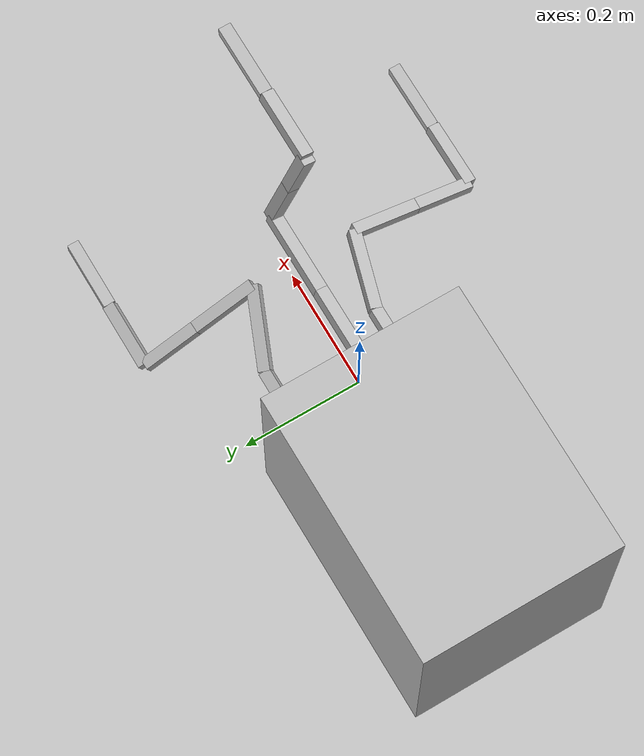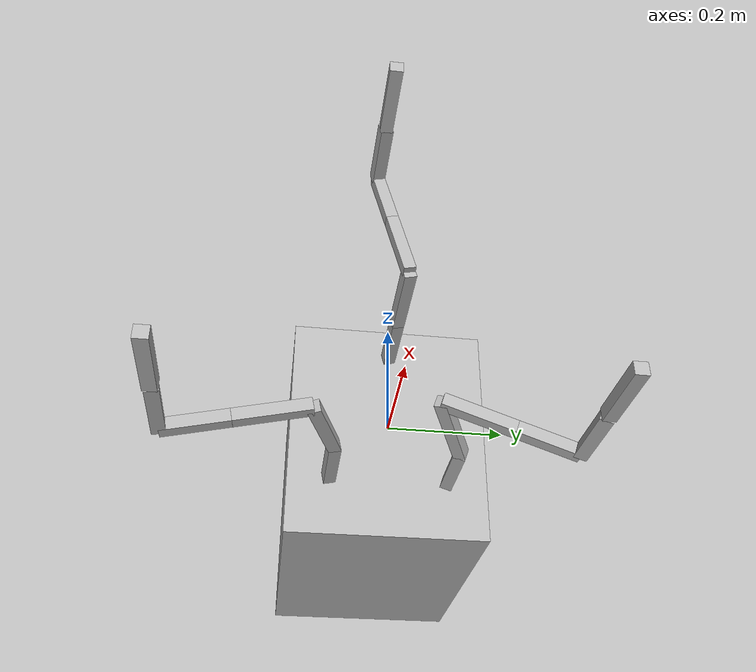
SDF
<?xml version="1.0" ?>
<sdf version="1.5">
<model name="four_bar_sdf">
<pose>0 0 0 0 0 0</pose>
<self_collide>true</self_collide>
<link name="linkROV">
<pose>-0.2286 0 0 0 0 0</pose>
<inertial>
<mass>1.0</mass>
<inertia>
<ixx>0.0227</ixx>
<iyy>0.0306</iyy>
<izz>0.0269</izz>
<ixy>0.0</ixy>
<ixz>0.0</ixz>
<iyz>0.0</iyz>
</inertia>
</inertial>
<collision name="linkROV_collision">
<geometry>
<box>
<size>0.4572 0.33805 0.39785</size>
</box>
</geometry>
</collision>
<visual name="linkROV_visual">
<geometry>
<box>
<size>0.4572 0.33805 0.39785</size>
</box>
</geometry>
<material>
<color rgba="0.3 0.3 0.3 1.0"/>
</material>
</visual>
</link>
<link name="arm1link1">
<pose>0.05750000 0.10000000 -0.10000000 -0.32166387 -0.00000000 0.00000000 </pose>
<inertial>
<mass>0.575</mass>
<inertia>
<ixx>3.8333e-05</ixx>
<iyy>6.5286e-04</iyy>
<izz>6.5286e-04</izz>
<ixy>0.0</ixy>
<ixz>0.0</ixz>
<iyz>0.0</iyz>
</inertia>
</inertial>
<collision name="arm1link1_collision">
<geometry>
<box>
<size>0.115 0.02 0.02</size>
</box>
</geometry>
</collision>
<visual name="arm1link1_visual">
<geometry>
<box>
<size>0.115 0.02 0.02</size>
</box>
</geometry>
<material>
<color rgba="0.3 0.3 0.3 1.0"/>
</material>
</visual>
</link>
<link name="arm1link2">
<pose>0.17910185 0.07331858 -0.09110876 -0.29618283 -0.12736172 -0.39442305 </pose>
<inertial>
<mass>0.700</mass>
<inertia>
<ixx>4.6667e-05</ixx>
<iyy>1.1667e-03</iyy>
<izz>1.1667e-03</izz>
<ixy>0.0</ixy>
<ixz>0.0</ixz>
<iyz>0.0</iyz>
</inertia>
</inertial>
<collision name="arm1link2_collision">
<geometry>
<box>
<size>0.140 0.02 0.02</size>
</box>
</geometry>
</collision>
<visual name="arm1link2_visual">
<geometry>
<box>
<size>0.140 0.02 0.02</size>
</box>
</geometry>
<material>
<color rgba="0.3 0.3 0.3 1.0"/>
</material>
</visual>
</link>
<link name="arm1link3">
<pose>0.24139741 0.10116110 -0.10038692 0.01046789 0.32149941 1.60391277 </pose>
<inertial>
<mass>0.575</mass>
<inertia>
<ixx>3.8333e-05</ixx>
<iyy>6.5286e-04</iyy>
<izz>6.5286e-04</izz>
<ixy>0.0</ixy>
<ixz>0.0</ixz>
<iyz>0.0</iyz>
</inertia>
</inertial>
<collision name="arm1link3_collision">
<geometry>
<box>
<size>0.115 0.02 0.02</size>
</box>
</geometry>
</collision>
<visual name="arm1link3_visual">
<geometry>
<box>
<size>0.115 0.02 0.02</size>
</box>
</geometry>
<material>
<color rgba="0.3 0.3 0.3 1.0"/>
</material>
</visual>
</link>
<link name="arm1link4">
<pose>0.23802041 0.20309717 -0.13435579 0.01047497 0.32149941 1.60391277 </pose>
<inertial>
<mass>0.500</mass>
<inertia>
<ixx>3.3333e-05</ixx>
<iyy>4.3333e-04</iyy>
<izz>4.3333e-04</izz>
<ixy>0.0</ixy>
<ixz>0.0</ixz>
<iyz>0.0</iyz>
</inertia>
</inertial>
<collision name="arm1link4_collision">
<geometry>
<box>
<size>0.100 0.02 0.02</size>
</box>
</geometry>
</collision>
<visual name="arm1link4_visual">
<geometry>
<box>
<size>0.100 0.02 0.02</size>
</box>
</geometry>
<material>
<color rgba="0.3 0.3 0.3 1.0"/>
</material>
</visual>
</link>
<link name="arm1link5">
<pose>0.29394972 0.25050979 -0.15015586 -0.32166410 0.00001033 0.00000861 </pose>
<inertial>
<mass>0.575</mass>
<inertia>
<ixx>3.8333e-05</ixx>
<iyy>6.5286e-04</iyy>
<izz>6.5286e-04</izz>
<ixy>0.0</ixy>
<ixz>0.0</ixz>
<iyz>0.0</iyz>
</inertia>
</inertial>
<collision name="arm1link5_collision">
<geometry>
<box>
<size>0.115 0.02 0.02</size>
</box>
</geometry>
</collision>
<visual name="arm1link5_visual">
<geometry>
<box>
<size>0.115 0.02 0.02</size>
</box>
</geometry>
<material>
<color rgba="0.3 0.3 0.3 1.0"/>
</material>
</visual>
</link>
<link name="arm1link6">
<pose>0.41144972 0.25051080 -0.15015708 -0.00001025 0.00001033 0.00000861 </pose>
<inertial>
<mass>0.600</mass>
<inertia>
<ixx>4.0000e-05</ixx>
<iyy>7.4000e-04</iyy>
<izz>7.4000e-04</izz>
<ixy>0.0</ixy>
<ixz>0.0</ixz>
<iyz>0.0</iyz>
</inertia>
</inertial>
<collision name="arm1link6_collision">
<geometry>
<box>
<size>0.120 0.02 0.02</size>
</box>
</geometry>
</collision>
<visual name="arm1link6_visual">
<geometry>
<box>
<size>0.120 0.02 0.02</size>
</box>
</geometry>
<material>
<color rgba="0.3 0.3 0.3 1.0"/>
</material>
</visual>
</link>
<link name="arm2link1">
<pose>0.05750000 -0.10000000 -0.10000000 -2.94380000 0.00000000 0.00000000 </pose>
<inertial>
<mass>0.575</mass>
<inertia>
<ixx>3.8333e-05</ixx>
<iyy>6.5286e-04</iyy>
<izz>6.5286e-04</izz>
<ixy>0.0</ixy>
<ixz>0.0</ixz>
<iyz>0.0</iyz>
</inertia>
</inertial>
<collision name="arm2link1_collision">
<geometry>
<box>
<size>0.115 0.02 0.02</size>
</box>
</geometry>
</collision>
<visual name="arm2link1_visual">
<geometry>
<box>
<size>0.115 0.02 0.02</size>
</box>
</geometry>
<material>
<color rgba="0.3 0.3 0.3 1.0"/>
</material>
</visual>
</link>
<link name="arm2link2">
<pose>0.18196000 -0.12002000 -0.10401000 -2.95220000 0.05733200 -0.29053000 </pose>
<inertial>
<mass>0.700</mass>
<inertia>
<ixx>4.6667e-05</ixx>
<iyy>1.1667e-03</iyy>
<izz>1.1667e-03</izz>
<ixy>0.0</ixy>
<ixz>0.0</ixz>
<iyz>0.0</iyz>
</inertia>
</inertial>
<collision name="arm2link2_collision">
<geometry>
<box>
<size>0.140 0.02 0.02</size>
</box>
</geometry>
</collision>
<visual name="arm2link2_visual">
<geometry>
<box>
<size>0.140 0.02 0.02</size>
</box>
</geometry>
<material>
<color rgba="0.3 0.3 0.3 1.0"/>
</material>
</visual>
</link>
<link name="arm2link3">
<pose>0.24567000 -0.19633000 -0.11930000 3.13030000 0.19743000 -1.62830000 </pose>
<inertial>
<mass>0.575</mass>
<inertia>
<ixx>3.8333e-05</ixx>
<iyy>6.5286e-04</iyy>
<izz>6.5286e-04</izz>
<ixy>0.0</ixy>
<ixz>0.0</ixz>
<iyz>0.0</iyz>
</inertia>
</inertial>
<collision name="arm2link3_collision">
<geometry>
<box>
<size>0.115 0.02 0.02</size>
</box>
</geometry>
</collision>
<visual name="arm2link3_visual">
<geometry>
<box>
<size>0.115 0.02 0.02</size>
</box>
</geometry>
<material>
<color rgba="0.3 0.3 0.3 1.0"/>
</material>
</visual>
</link>
<link name="arm2link4">
<pose>0.23961000 -0.30157000 -0.14039000 -0.01122800 0.19743000 -1.62830000 </pose>
<inertial>
<mass>0.500</mass>
<inertia>
<ixx>3.3333e-05</ixx>
<iyy>4.3333e-04</iyy>
<izz>4.3333e-04</izz>
<ixy>0.0</ixy>
<ixz>0.0</ixz>
<iyz>0.0</iyz>
</inertia>
</inertial>
<collision name="arm2link4_collision">
<geometry>
<box>
<size>0.100 0.02 0.02</size>
</box>
</geometry>
</collision>
<visual name="arm2link4_visual">
<geometry>
<box>
<size>0.100 0.02 0.02</size>
</box>
</geometry>
<material>
<color rgba="0.3 0.3 0.3 1.0"/>
</material>
</visual>
</link>
<link name="arm2link5">
<pose>0.29429000 -0.35053000 -0.15019000 0.19774000 -0.00000141 -0.00035113 </pose>
<inertial>
<mass>0.575</mass>
<inertia>
<ixx>3.8333e-05</ixx>
<iyy>6.5286e-04</iyy>
<izz>6.5286e-04</izz>
<ixy>0.0</ixy>
<ixz>0.0</ixz>
<iyz>0.0</iyz>
</inertia>
</inertial>
<collision name="arm2link5_collision">
<geometry>
<box>
<size>0.115 0.02 0.02</size>
</box>
</geometry>
</collision>
<visual name="arm2link5_visual">
<geometry>
<box>
<size>0.115 0.02 0.02</size>
</box>
</geometry>
<material>
<color rgba="0.3 0.3 0.3 1.0"/>
</material>
</visual>
</link>
<link name="arm2link6">
<pose>0.41179000 -0.35057000 -0.15019000 0.00007708 -0.00000141 -0.00035113 </pose>
<inertial>
<mass>0.600</mass>
<inertia>
<ixx>4.0000e-05</ixx>
<iyy>7.4000e-04</iyy>
<izz>7.4000e-04</izz>
<ixy>0.0</ixy>
<ixz>0.0</ixz>
<iyz>0.0</iyz>
</inertia>
</inertial>
<collision name="arm2link6_collision">
<geometry>
<box>
<size>0.120 0.02 0.02</size>
</box>
</geometry>
</collision>
<visual name="arm2link6_visual">
<geometry>
<box>
<size>0.120 0.02 0.02</size>
</box>
</geometry>
<material>
<color rgba="0.3 0.3 0.3 1.0"/>
</material>
</visual>
</link>
<link name="arm3link1">
<pose>0.05750000 0.00000000 0.14142000 1.80570000 0.00000000 0.00000000 </pose>
<inertial>
<mass>0.575</mass>
<inertia>
<ixx>3.8333e-05</ixx>
<iyy>6.5286e-04</iyy>
<izz>6.5286e-04</izz>
<ixy>0.0</ixy>
<ixz>0.0</ixz>
<iyz>0.0</iyz>
</inertia>
</inertial>
<collision name="arm3link1_collision">
<geometry>
<box>
<size>0.115 0.02 0.02</size>
</box>
</geometry>
</collision>
<visual name="arm3link1_visual">
<geometry>
<box>
<size>0.115 0.02 0.02</size>
</box>
</geometry>
<material>
<color rgba="0.3 0.3 0.3 1.0"/>
</material>
</visual>
</link>
<link name="arm3link2">
<pose>0.18500000 -0.00002154 0.14151000 1.80570000 -0.00128570 -0.00030772 </pose>
<inertial>
<mass>0.700</mass>
<inertia>
<ixx>4.6667e-05</ixx>
<iyy>1.1667e-03</iyy>
<izz>1.1667e-03</izz>
<ixy>0.0</ixy>
<ixz>0.0</ixz>
<iyz>0.0</iyz>
</inertia>
</inertial>
<collision name="arm3link2_collision">
<geometry>
<box>
<size>0.140 0.02 0.02</size>
</box>
</geometry>
</collision>
<visual name="arm3link2_visual">
<geometry>
<box>
<size>0.140 0.02 0.02</size>
</box>
</geometry>
<material>
<color rgba="0.3 0.3 0.3 1.0"/>
</material>
</visual>
</link>
<link name="arm3link3">
<pose>0.25007000 -0.01337800 0.19732000 -2.79770000 -1.32100000 -1.92480000 </pose>
<inertial>
<mass>0.575</mass>
<inertia>
<ixx>3.8333e-05</ixx>
<iyy>6.5286e-04</iyy>
<izz>6.5286e-04</izz>
<ixy>0.0</ixy>
<ixz>0.0</ixz>
<iyz>0.0</iyz>
</inertia>
</inertial>
<collision name="arm3link3_collision">
<geometry>
<box>
<size>0.115 0.02 0.02</size>
</box>
</geometry>
</collision>
<visual name="arm3link3_visual">
<geometry>
<box>
<size>0.115 0.02 0.02</size>
</box>
</geometry>
<material>
<color rgba="0.3 0.3 0.3 1.0"/>
</material>
</visual>
</link>
<link name="arm3link4">
<pose>0.24086000 -0.03830700 0.30148000 0.34386000 -1.32100000 -1.92480000 </pose>
<inertial>
<mass>0.500</mass>
<inertia>
<ixx>3.3333e-05</ixx>
<iyy>4.3333e-04</iyy>
<izz>4.3333e-04</izz>
<ixy>0.0</ixy>
<ixz>0.0</ixz>
<iyz>0.0</iyz>
</inertia>
</inertial>
<collision name="arm3link4_collision">
<geometry>
<box>
<size>0.100 0.02 0.02</size>
</box>
</geometry>
</collision>
<visual name="arm3link4_visual">
<geometry>
<box>
<size>0.100 0.02 0.02</size>
</box>
</geometry>
<material>
<color rgba="0.3 0.3 0.3 1.0"/>
</material>
</visual>
</link>
<link name="arm3link5">
<pose>0.29407000 -0.04989400 0.34989000 -1.33590000 0.00070272 0.00014124 </pose>
<inertial>
<mass>0.575</mass>
<inertia>
<ixx>3.8333e-05</ixx>
<iyy>6.5286e-04</iyy>
<izz>6.5286e-04</izz>
<ixy>0.0</ixy>
<ixz>0.0</ixz>
<iyz>0.0</iyz>
</inertia>
</inertial>
<collision name="arm3link5_collision">
<geometry>
<box>
<size>0.115 0.02 0.02</size>
</box>
</geometry>
</collision>
<visual name="arm3link5_visual">
<geometry>
<box>
<size>0.115 0.02 0.02</size>
</box>
</geometry>
<material>
<color rgba="0.3 0.3 0.3 1.0"/>
</material>
</visual>
</link>
<link name="arm3link6">
<pose>0.41157000 -0.04987800 0.34980000 -0.00050143 0.00070272 0.00014124 </pose>
<inertial>
<mass>0.600</mass>
<inertia>
<ixx>4.0000e-05</ixx>
<iyy>7.4000e-04</iyy>
<izz>7.4000e-04</izz>
<ixy>0.0</ixy>
<ixz>0.0</ixz>
<iyz>0.0</iyz>
</inertia>
</inertial>
<collision name="arm3link6_collision">
<geometry>
<box>
<size>0.120 0.02 0.02</size>
</box>
</geometry>
</collision>
<visual name="arm3link6_visual">
<geometry>
<box>
<size>0.120 0.02 0.02</size>
</box>
</geometry>
<material>
<color rgba="0.3 0.3 0.3 1.0"/>
</material>
</visual>
</link>
<joint name="arm1_jointgrip" type="fixed">
<pose>0 0 0 0 0 0</pose>
<parent>world</parent>
<child>arm1link6</child>
</joint>
<joint name="arm1_joint1" type="revolute">
<pose>0 0 0 0 0 0</pose>
<parent>linkROV</parent>
<child>arm1link1</child>
<axis>
<xyz>1 0 0</xyz>
<dynamics>
<damping>0.05</damping>
<friction>0</friction>
<spring_reference>0</spring_reference>
<spring_stiffness>10.0</spring_stiffness>
</dynamics>
</axis>
</joint>
<joint name="arm1_joint2" type="revolute">
<pose>-0.07 0 0 0 0 0</pose>
<parent>arm1link1</parent>
<child>arm1link2</child>
<axis>
<xyz>0 0 1</xyz>
<dynamics>
<damping>0.05</damping>
<friction>0</friction>
<spring_reference>0</spring_reference>
<spring_stiffness>10.0</spring_stiffness>
</dynamics>
</axis>
</joint>
<joint name="arm1_joint3" type="revolute">
<pose>-0.0575 0 0 0 0 0</pose>
<parent>arm1link2</parent>
<child>arm1link3</child>
<axis>
<xyz>0 0 1</xyz>
<dynamics>
<damping>0.05</damping>
<friction>0</friction>
<spring_reference>0</spring_reference>
<spring_stiffness>10.0</spring_stiffness>
</dynamics>
</axis>
</joint>
<joint name="arm1_joint4" type="revolute">
<pose>-0.05 0 0 0 0 0</pose>
<parent>arm1link3</parent>
<child>arm1link4</child>
<axis>
<xyz>1 0 0</xyz>
<dynamics>
<damping>0.05</damping>
<friction>0</friction>
<spring_reference>0</spring_reference>
<spring_stiffness>10.0</spring_stiffness>
</dynamics>
</axis>
</joint>
<joint name="arm1_joint5" type="revolute">
<pose>-0.0575 0 0 0 0 0</pose>
<parent>arm1link4</parent>
<child>arm1link5</child>
<axis>
<xyz>0 0 1</xyz>
<dynamics>
<damping>0.05</damping>
<friction>0</friction>
<spring_reference>0</spring_reference>
<spring_stiffness>10.0</spring_stiffness>
</dynamics>
</axis>
</joint>
<joint name="arm1_joint6" type="revolute">
<pose>-0.06 0 0 0 0 0</pose>
<parent>arm1link5</parent>
<child>arm1link6</child>
<axis>
<xyz>1 0 0</xyz>
<dynamics>
<damping>0.05</damping>
<friction>0</friction>
<spring_reference>0</spring_reference>
<spring_stiffness>10.0</spring_stiffness>
</dynamics>
</axis>
</joint>
<joint name="arm2_jointgrip" type="fixed">
<pose>0 0 0 0 0 0</pose>
<parent>world</parent>
<child>arm2link6</child>
</joint>
<joint name="arm2_joint1" type="revolute">
<pose>0 0 0 0 0 0</pose>
<parent>linkROV</parent>
<child>arm2link1</child>
<axis>
<xyz>1 0 0</xyz>
<dynamics>
<damping>0.05</damping>
<friction>0</friction>
<spring_reference>0</spring_reference>
<spring_stiffness>10.0</spring_stiffness>
</dynamics>
</axis>
</joint>
<joint name="arm2_joint2" type="revolute">
<pose>-0.07 0 0 0 0 0</pose>
<parent>arm2link1</parent>
<child>arm2link2</child>
<axis>
<xyz>0 0 1</xyz>
<dynamics>
<damping>0.05</damping>
<friction>0</friction>
<spring_reference>0</spring_reference>
<spring_stiffness>10.0</spring_stiffness>
</dynamics>
</axis>
</joint>
<joint name="arm2_joint3" type="revolute">
<pose>-0.0575 0 0 0 0 0</pose>
<parent>arm2link2</parent>
<child>arm2link3</child>
<axis>
<xyz>0 0 1</xyz>
<dynamics>
<damping>0.05</damping>
<friction>0</friction>
<spring_reference>0</spring_reference>
<spring_stiffness>10.0</spring_stiffness>
</dynamics>
</axis>
</joint>
<joint name="arm2_joint4" type="revolute">
<pose>-0.05 0 0 0 0 0</pose>
<parent>arm2link3</parent>
<child>arm2link4</child>
<axis>
<xyz>1 0 0</xyz>
<dynamics>
<damping>0.05</damping>
<friction>0</friction>
<spring_reference>0</spring_reference>
<spring_stiffness>10.0</spring_stiffness>
</dynamics>
</axis>
</joint>
<joint name="arm2_joint5" type="revolute">
<pose>-0.0575 0 0 0 0 0</pose>
<parent>arm2link4</parent>
<child>arm2link5</child>
<axis>
<xyz>0 0 1</xyz>
<dynamics>
<damping>0.05</damping>
<friction>0</friction>
<spring_reference>0</spring_reference>
<spring_stiffness>10.0</spring_stiffness>
</dynamics>
</axis>
</joint>
<joint name="arm2_joint6" type="revolute">
<pose>-0.06 0 0 0 0 0</pose>
<parent>arm2link5</parent>
<child>arm2link6</child>
<axis>
<xyz>1 0 0</xyz>
<dynamics>
<damping>0.05</damping>
<friction>0</friction>
<spring_reference>0</spring_reference>
<spring_stiffness>10.0</spring_stiffness>
</dynamics>
</axis>
</joint>
<joint name="arm3_jointgrip" type="fixed">
<pose>0 0 0 0 0 0</pose>
<parent>world</parent>
<child>arm3link6</child>
</joint>
<joint name="arm3_joint1" type="revolute">
<pose>0 0 0 0 0 0</pose>
<parent>linkROV</parent>
<child>arm3link1</child>
<axis>
<xyz>1 0 0</xyz>
<dynamics>
<damping>0.05</damping>
<friction>0</friction>
<spring_reference>0</spring_reference>
<spring_stiffness>10.0</spring_stiffness>
</dynamics>
</axis>
</joint>
<joint name="arm3_joint2" type="revolute">
<pose>-0.07 0 0 0 0 0</pose>
<parent>arm3link1</parent>
<child>arm3link2</child>
<axis>
<xyz>0 0 1</xyz>
<dynamics>
<damping>0.05</damping>
<friction>0</friction>
<spring_reference>0</spring_reference>
<spring_stiffness>10.0</spring_stiffness>
</dynamics>
</axis>
</joint>
<joint name="arm3_joint3" type="revolute">
<pose>-0.0575 0 0 0 0 0</pose>
<parent>arm3link2</parent>
<child>arm3link3</child>
<axis>
<xyz>0 0 1</xyz>
<dynamics>
<damping>0.05</damping>
<friction>0</friction>
<spring_reference>0</spring_reference>
<spring_stiffness>10.0</spring_stiffness>
</dynamics>
</axis>
</joint>
<joint name="arm3_joint4" type="revolute">
<pose>-0.05 0 0 0 0 0</pose>
<parent>arm3link3</parent>
<child>arm3link4</child>
<axis>
<xyz>1 0 0</xyz>
<dynamics>
<damping>0.05</damping>
<friction>0</friction>
<spring_reference>0</spring_reference>
<spring_stiffness>10.0</spring_stiffness>
</dynamics>
</axis>
</joint>
<joint name="arm3_joint5" type="revolute">
<pose>-0.0575 0 0 0 0 0</pose>
<parent>arm3link4</parent>
<child>arm3link5</child>
<axis>
<xyz>0 0 1</xyz>
<dynamics>
<damping>0.05</damping>
<friction>0</friction>
<spring_reference>0</spring_reference>
<spring_stiffness>10.0</spring_stiffness>
</dynamics>
</axis>
</joint>
<joint name="arm3_joint6" type="revolute">
<pose>-0.06 0 0 0 0 0</pose>
<parent>arm3link5</parent>
<child>arm3link6</child>
<axis>
<xyz>1 0 0</xyz>
<dynamics>
<damping>0.05</damping>
<friction>0</friction>
<spring_reference>0</spring_reference>
<spring_stiffness>10.0</spring_stiffness>
</dynamics>
</axis>
</joint>
</model>
</sdf>
